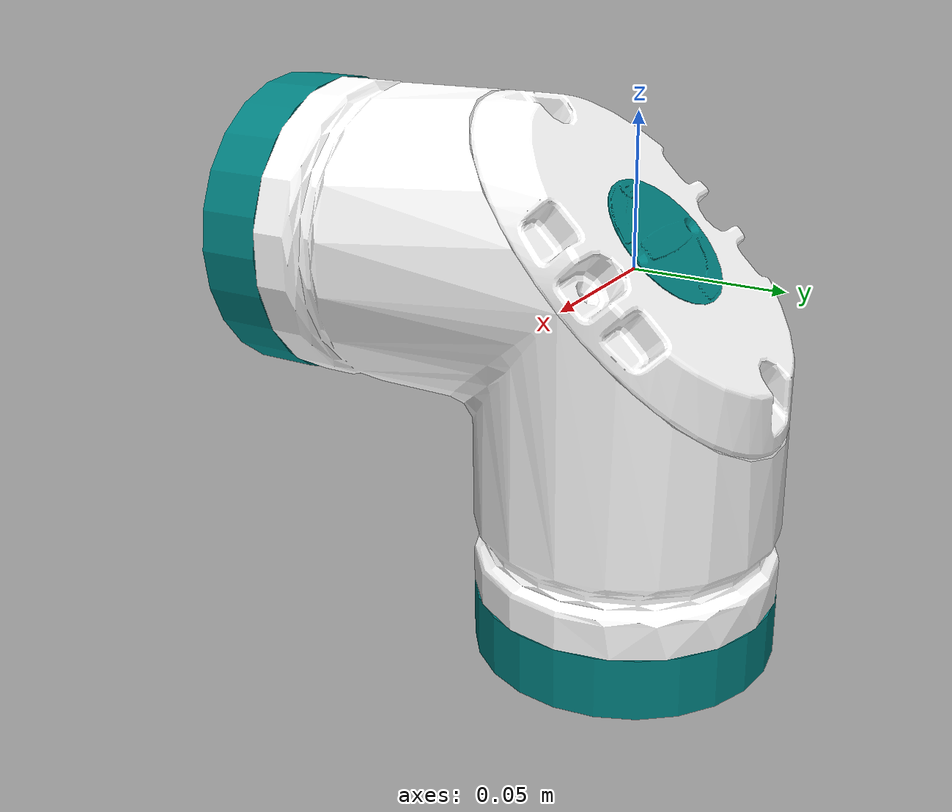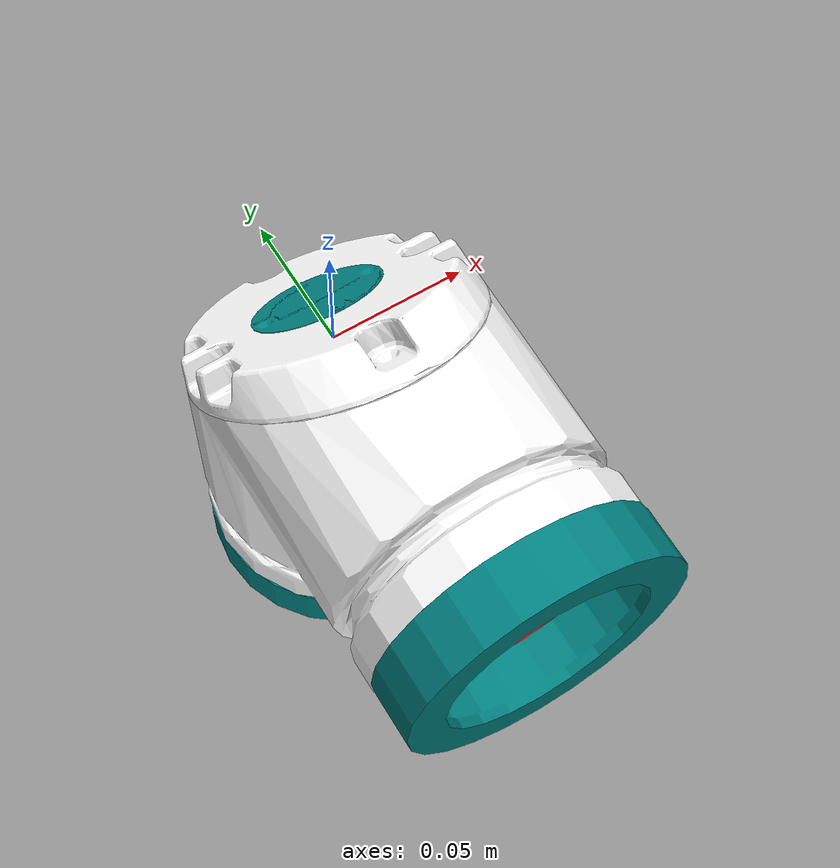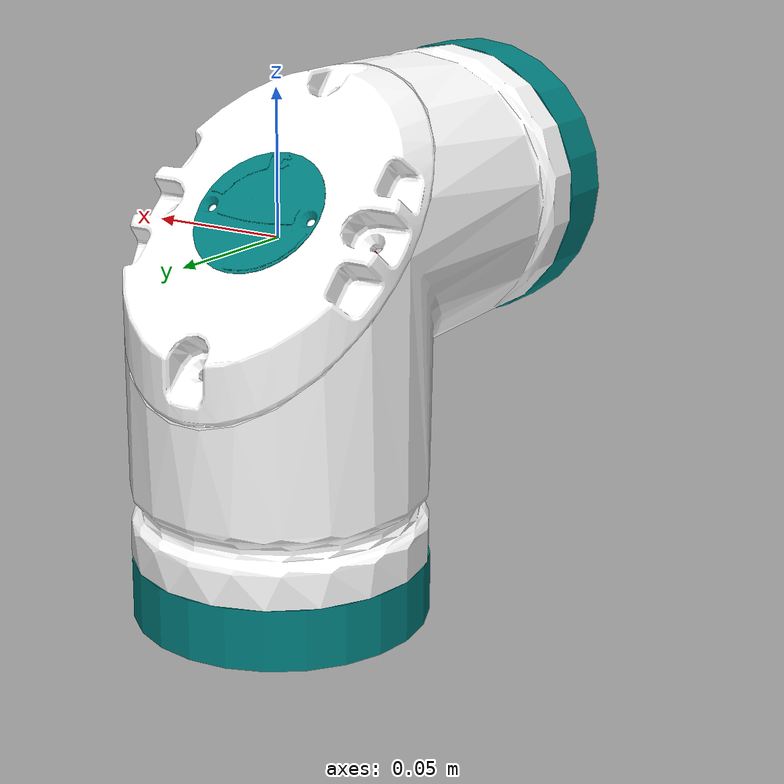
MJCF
<mujoco model="l1">
  <default>
    <default class="visual">
      <geom group="2" type="mesh" contype="0" conaffinity="0"/>
    </default>
    <default class="collision">
      <geom group="3" type="mesh"/>
    </default>
  </default>
  <asset>
    <material name="MTL0.006" specular="0.0" shininess="0.25" rgba="1.000000 1.000000 1.000000 1.000000"/>
    <material name="MTL0.007" specular="0.0" shininess="0.25" rgba="0.000000 0.502000 0.502000 1.000000"/>
    <material name="MTL0.008" specular="0.0" shininess="0.25" rgba="0.000000 0.502000 0.502000 1.000000"/>
    <material name="MTL0.009" specular="0.0" shininess="0.25" rgba="0.000000 0.502000 0.502000 1.000000"/>
    <material name="MTL1.002" specular="0.0" shininess="0.25" rgba="1.000000 1.000000 1.000000 1.000000"/>
    <material name="MTL2.001" specular="0.0" shininess="0.25" rgba="1.000000 0.000000 0.000000 1.000000"/>
    <material name="Material.002" specular="0.0" shininess="0.25" rgba="0.800000 0.800000 0.800000 1.000000"/>
    <mesh file="l1_0.obj"/>
    <mesh file="l1_1.obj"/>
    <mesh file="l1_2.obj"/>
    <mesh file="l1_3.obj"/>
    <mesh file="l1_4.obj"/>
    <mesh file="l1_5.obj"/>
    <mesh file="l1_6.obj"/>
  </asset>
  <worldbody>
    <body name="l1">
      <geom mesh="l1_0" material="MTL0.009" class="visual"/>
      <geom mesh="l1_1" material="MTL0.008" class="visual"/>
      <geom mesh="l1_2" material="MTL0.007" class="visual"/>
      <geom mesh="l1_3" material="MTL2.001" class="visual"/>
      <geom mesh="l1_4" material="MTL1.002" class="visual"/>
      <geom mesh="l1_5" material="Material.002" class="visual"/>
      <geom mesh="l1_6" material="MTL0.006" class="visual"/>
      <geom mesh="l1_0" class="collision"/>
      <geom mesh="l1_1" class="collision"/>
      <geom mesh="l1_2" class="collision"/>
      <geom mesh="l1_3" class="collision"/>
      <geom mesh="l1_4" class="collision"/>
      <geom mesh="l1_5" class="collision"/>
      <geom mesh="l1_6" class="collision"/>
    </body>
  </worldbody>
</mujoco>
